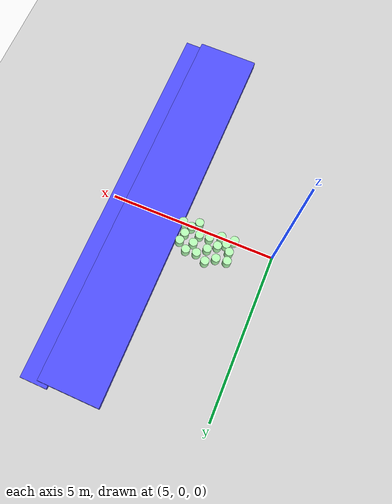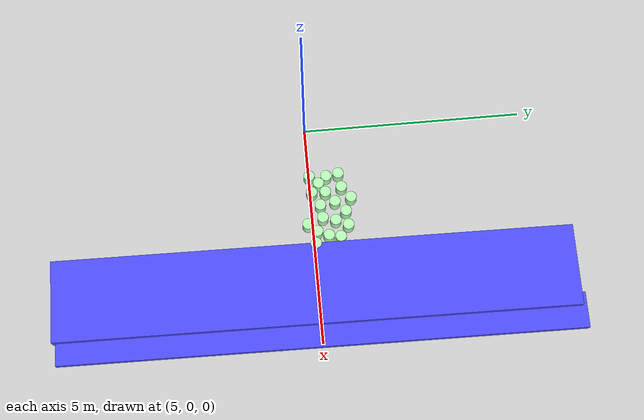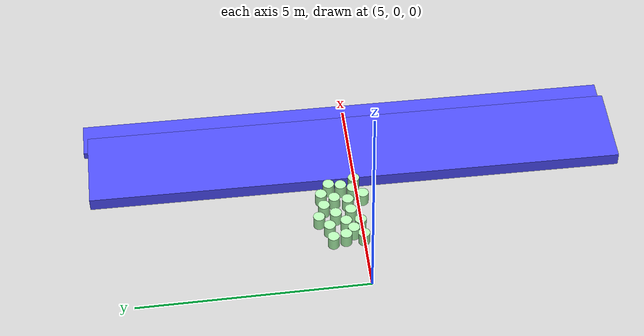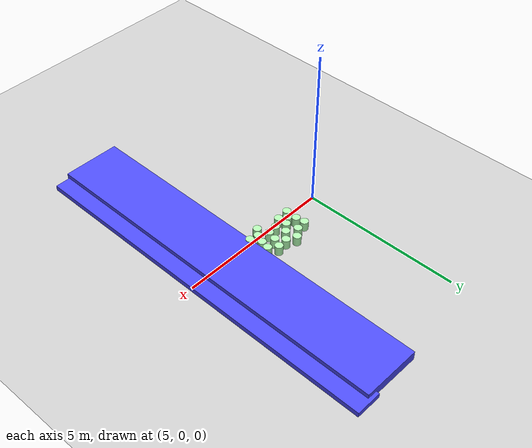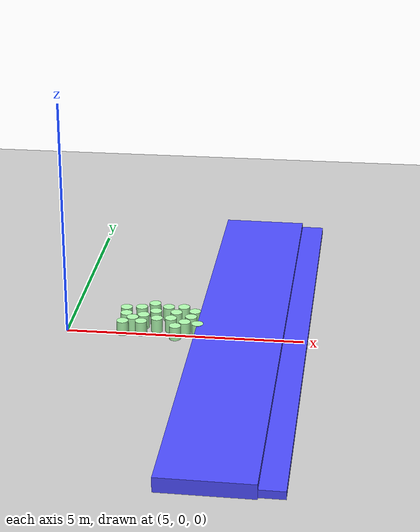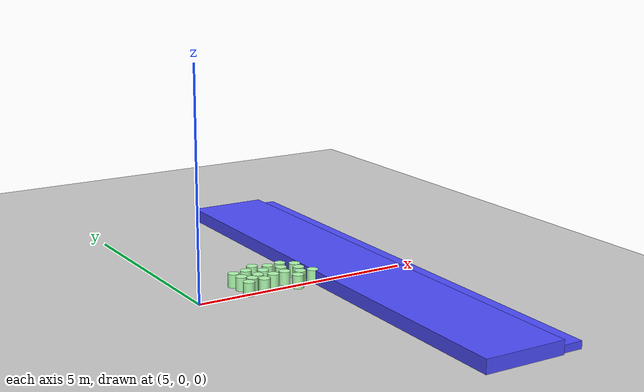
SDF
<sdf version="1.7">
 <world name="default">
  <model name="ground_plane">
   <static>1</static>
   <link name="link">
    <collision name="collision">
     <geometry><plane><normal>0 0 1</normal><size>100 100</size></plane></geometry>
     <surface><friction><ode><mu>100</mu><mu2>50</mu2></ode></friction></surface>
    </collision>
    <visual name="visual">
     <cast_shadows>0</cast_shadows>
     <geometry><plane><normal>0 0 1</normal><size>100 100</size></plane></geometry>
     <material>
      <script><uri>file://media/materials/scripts/gazebo.material</uri><name>Gazebo/Grey</name></script>
     </material>
    </visual>
   </link>
  </model>
  <model name="ban_400_80_30_clone">
   <link name="link">
    <inertial>
     <mass>1</mass>
     <inertia>
      <ixx>0.166667</ixx>
      <ixy>0</ixy>
      <ixz>0</ixz>
      <iyy>0.166667</iyy>
      <iyz>0</iyz>
      <izz>0.166667</izz>
     </inertia>
    </inertial>
    <visual name="visual">
     <geometry><box><size>11.7457 0.8 0.3</size></box></geometry>
     <material>
      <script><name>Gazebo/Grey</name><uri>file://media/materials/scripts/gazebo.material</uri></script>
      <shader type="pixel"><normal_map>__default__</normal_map></shader>
      <ambient>0.3 0.3 1 1</ambient>
      <diffuse>0.7 0.7 0.7 1</diffuse>
      <specular>0.01 0.01 0.01 1</specular>
      <emissive>0 0 0 1</emissive>
     </material>
    </visual>
    <collision name="collision">
     <geometry><box><size>11.7457 0.8 0.3</size></box></geometry>
     <surface>
      <friction>
       <ode><mu>1</mu><mu2>1</mu2><fdir1>0 0 0</fdir1><slip1>0</slip1><slip2>0</slip2></ode>
       <torsional>
        <coefficient>1</coefficient>
        <patch_radius>0</patch_radius>
        <surface_radius>0</surface_radius>
        <use_patch_radius>1</use_patch_radius>
        <ode><slip>0</slip></ode>
       </torsional>
      </friction>
      <bounce><restitution_coefficient>0</restitution_coefficient><threshold>1e+06</threshold></bounce>
      <contact>
       <collide_without_contact>0</collide_without_contact>
       <collide_without_contact_bitmask>1</collide_without_contact_bitmask>
       <collide_bitmask>1</collide_bitmask>
       <ode>
        <soft_cfm>0</soft_cfm>
        <soft_erp>0.2</soft_erp>
        <kp>1e+13</kp>
        <kd>1</kd>
        <max_vel>0.01</max_vel>
        <min_depth>0</min_depth>
       </ode>
       <bullet>
        <split_impulse>1</split_impulse>
        <split_impulse_penetration_threshold>-0.01</split_impulse_penetration_threshold>
        <soft_cfm>0</soft_cfm>
        <soft_erp>0.2</soft_erp>
        <kp>1e+13</kp>
        <kd>1</kd>
       </bullet>
      </contact>
     </surface>
    </collision>
   </link>
   <static>1</static>
   <pose>9.68721 0.016567 0 0 -0 1.55763</pose>
  </model>
  <model name="ban_400_80_30_clone_clone_clone">
   <link name="link">
    <inertial>
     <mass>1</mass>
     <inertia>
      <ixx>0.166667</ixx>
      <ixy>0</ixy>
      <ixz>0</ixz>
      <iyy>0.166667</iyy>
      <iyz>0</iyz>
      <izz>0.166667</izz>
     </inertia>
    </inertial>
    <visual name="visual">
     <geometry><box><size>11.703 1.83242 0.3</size></box></geometry>
     <material>
      <script><name>Gazebo/Grey</name><uri>file://media/materials/scripts/gazebo.material</uri></script>
      <shader type="pixel"><normal_map>__default__</normal_map></shader>
      <ambient>0.3 0.3 1 1</ambient>
      <diffuse>0.7 0.7 0.7 1</diffuse>
      <specular>0.01 0.01 0.01 1</specular>
      <emissive>0 0 0 1</emissive>
     </material>
    </visual>
    <collision name="collision">
     <geometry><box><size>11.703 1.83242 0.3</size></box></geometry>
     <surface>
      <friction>
       <ode><mu>1</mu><mu2>1</mu2><fdir1>0 0 0</fdir1><slip1>0</slip1><slip2>0</slip2></ode>
       <torsional>
        <coefficient>1</coefficient>
        <patch_radius>0</patch_radius>
        <surface_radius>0</surface_radius>
        <use_patch_radius>1</use_patch_radius>
        <ode><slip>0</slip></ode>
       </torsional>
      </friction>
      <bounce><restitution_coefficient>0</restitution_coefficient><threshold>1e+06</threshold></bounce>
      <contact>
       <collide_without_contact>0</collide_without_contact>
       <collide_without_contact_bitmask>1</collide_without_contact_bitmask>
       <collide_bitmask>1</collide_bitmask>
       <ode>
        <soft_cfm>0</soft_cfm>
        <soft_erp>0.2</soft_erp>
        <kp>1e+13</kp>
        <kd>1</kd>
        <max_vel>0.01</max_vel>
        <min_depth>0</min_depth>
       </ode>
       <bullet>
        <split_impulse>1</split_impulse>
        <split_impulse_penetration_threshold>-0.01</split_impulse_penetration_threshold>
        <soft_cfm>0</soft_cfm>
        <soft_erp>0.2</soft_erp>
        <kp>1e+13</kp>
        <kd>1</kd>
       </bullet>
      </contact>
     </surface>
    </collision>
   </link>
   <static>1</static>
   <pose>8.67792 -0.051809 0.139007 0 -0 1.55763</pose>
  </model>
  <model name="mhz_y_25_30_clone_13_clone_16">
   <link name="link">
    <inertial>
     <mass>1</mass>
     <inertia><ixx>0.145833</ixx><ixy>0</ixy><ixz>0</ixz><iyy>0.145833</iyy><iyz>0</iyz><izz>0.125</izz></inertia>
    </inertial>
    <visual name="visual">
     <geometry><cylinder><radius>0.125</radius><length>0.3</length></cylinder></geometry>
     <material>
      <script><name>Gazebo/Grey</name><uri>file://media/materials/scripts/gazebo.material</uri></script>
      <shader type="pixel"><normal_map>__default__</normal_map></shader>
      <ambient>0 1 0 0</ambient>
      <diffuse>0.7 1 0.7 1</diffuse>
      <specular>0.01 0.01 0.01 1</specular>
      <emissive>0 0 0 1</emissive>
     </material>
    </visual>
    <collision name="collision">
     <geometry><cylinder><radius>0.125</radius><length>0.3</length></cylinder></geometry>
     <surface>
      <friction>
       <ode><mu>1</mu><mu2>1</mu2><fdir1>0 0 0</fdir1><slip1>0</slip1><slip2>0</slip2></ode>
       <torsional>
        <coefficient>1</coefficient>
        <patch_radius>0</patch_radius>
        <surface_radius>0</surface_radius>
        <use_patch_radius>1</use_patch_radius>
        <ode><slip>0</slip></ode>
       </torsional>
      </friction>
      <bounce><restitution_coefficient>0</restitution_coefficient><threshold>1e+06</threshold></bounce>
      <contact>
       <collide_without_contact>0</collide_without_contact>
       <collide_without_contact_bitmask>1</collide_without_contact_bitmask>
       <collide_bitmask>1</collide_bitmask>
       <ode>
        <soft_cfm>0</soft_cfm>
        <soft_erp>0.2</soft_erp>
        <kp>1e+13</kp>
        <kd>1</kd>
        <max_vel>0.01</max_vel>
        <min_depth>0</min_depth>
       </ode>
       <bullet>
        <split_impulse>1</split_impulse>
        <split_impulse_penetration_threshold>-0.01</split_impulse_penetration_threshold>
        <soft_cfm>0</soft_cfm>
        <soft_erp>0.2</soft_erp>
        <kp>1e+13</kp>
        <kd>1</kd>
       </bullet>
      </contact>
     </surface>
    </collision>
   </link>
   <static>1</static>
   <pose>6.1814 0.012333 0.14679 0 -0 0</pose>
  </model>
  <model name="mhz_y_25_30_clone_13_clone_17">
   <link name="link">
    <inertial>
     <mass>1</mass>
     <inertia><ixx>0.145833</ixx><ixy>0</ixy><ixz>0</ixz><iyy>0.145833</iyy><iyz>0</iyz><izz>0.125</izz></inertia>
    </inertial>
    <visual name="visual">
     <geometry><cylinder><radius>0.125</radius><length>0.3</length></cylinder></geometry>
     <material>
      <script><name>Gazebo/Grey</name><uri>file://media/materials/scripts/gazebo.material</uri></script>
      <shader type="pixel"><normal_map>__default__</normal_map></shader>
      <ambient>0 1 0 0</ambient>
      <diffuse>0.7 1 0.7 1</diffuse>
      <specular>0.01 0.01 0.01 1</specular>
      <emissive>0 0 0 1</emissive>
     </material>
    </visual>
    <collision name="collision">
     <geometry><cylinder><radius>0.125</radius><length>0.3</length></cylinder></geometry>
     <surface>
      <friction>
       <ode><mu>1</mu><mu2>1</mu2><fdir1>0 0 0</fdir1><slip1>0</slip1><slip2>0</slip2></ode>
       <torsional>
        <coefficient>1</coefficient>
        <patch_radius>0</patch_radius>
        <surface_radius>0</surface_radius>
        <use_patch_radius>1</use_patch_radius>
        <ode><slip>0</slip></ode>
       </torsional>
      </friction>
      <bounce><restitution_coefficient>0</restitution_coefficient><threshold>1e+06</threshold></bounce>
      <contact>
       <collide_without_contact>0</collide_without_contact>
       <collide_without_contact_bitmask>1</collide_without_contact_bitmask>
       <collide_bitmask>1</collide_bitmask>
       <ode>
        <soft_cfm>0</soft_cfm>
        <soft_erp>0.2</soft_erp>
        <kp>1e+13</kp>
        <kd>1</kd>
        <max_vel>0.01</max_vel>
        <min_depth>0</min_depth>
       </ode>
       <bullet>
        <split_impulse>1</split_impulse>
        <split_impulse_penetration_threshold>-0.01</split_impulse_penetration_threshold>
        <soft_cfm>0</soft_cfm>
        <soft_erp>0.2</soft_erp>
        <kp>1e+13</kp>
        <kd>1</kd>
       </bullet>
      </contact>
     </surface>
    </collision>
   </link>
   <static>1</static>
   <pose>6.2067 0.395552 0.14679 0 -0 0</pose>
  </model>
  <model name="mhz_y_25_30_clone_13_clone_23">
   <link name="link">
    <inertial>
     <mass>1</mass>
     <inertia><ixx>0.145833</ixx><ixy>0</ixy><ixz>0</ixz><iyy>0.145833</iyy><iyz>0</iyz><izz>0.125</izz></inertia>
    </inertial>
    <visual name="visual">
     <geometry><cylinder><radius>0.125</radius><length>0.3</length></cylinder></geometry>
     <material>
      <script><name>Gazebo/Grey</name><uri>file://media/materials/scripts/gazebo.material</uri></script>
      <shader type="pixel"><normal_map>__default__</normal_map></shader>
      <ambient>0 1 0 0</ambient>
      <diffuse>0.7 1 0.7 1</diffuse>
      <specular>0.01 0.01 0.01 1</specular>
      <emissive>0 0 0 1</emissive>
     </material>
    </visual>
    <collision name="collision">
     <geometry><cylinder><radius>0.125</radius><length>0.3</length></cylinder></geometry>
     <surface>
      <friction>
       <ode><mu>1</mu><mu2>1</mu2><fdir1>0 0 0</fdir1><slip1>0</slip1><slip2>0</slip2></ode>
       <torsional>
        <coefficient>1</coefficient>
        <patch_radius>0</patch_radius>
        <surface_radius>0</surface_radius>
        <use_patch_radius>1</use_patch_radius>
        <ode><slip>0</slip></ode>
       </torsional>
      </friction>
      <bounce><restitution_coefficient>0</restitution_coefficient><threshold>1e+06</threshold></bounce>
      <contact>
       <collide_without_contact>0</collide_without_contact>
       <collide_without_contact_bitmask>1</collide_without_contact_bitmask>
       <collide_bitmask>1</collide_bitmask>
       <ode>
        <soft_cfm>0</soft_cfm>
        <soft_erp>0.2</soft_erp>
        <kp>1e+13</kp>
        <kd>1</kd>
        <max_vel>0.01</max_vel>
        <min_depth>0</min_depth>
       </ode>
       <bullet>
        <split_impulse>1</split_impulse>
        <split_impulse_penetration_threshold>-0.01</split_impulse_penetration_threshold>
        <soft_cfm>0</soft_cfm>
        <soft_erp>0.2</soft_erp>
        <kp>1e+13</kp>
        <kd>1</kd>
       </bullet>
      </contact>
     </surface>
    </collision>
   </link>
   <static>1</static>
   <pose>6.5702 0.039056 0.14679 0 -0 0</pose>
  </model>
  <model name="mhz_y_25_30_clone_13_clone_24">
   <link name="link">
    <inertial>
     <mass>1</mass>
     <inertia><ixx>0.145833</ixx><ixy>0</ixy><ixz>0</ixz><iyy>0.145833</iyy><iyz>0</iyz><izz>0.125</izz></inertia>
    </inertial>
    <visual name="visual">
     <geometry><cylinder><radius>0.125</radius><length>0.3</length></cylinder></geometry>
     <material>
      <script><name>Gazebo/Grey</name><uri>file://media/materials/scripts/gazebo.material</uri></script>
      <shader type="pixel"><normal_map>__default__</normal_map></shader>
      <ambient>0 1 0 0</ambient>
      <diffuse>0.7 1 0.7 1</diffuse>
      <specular>0.01 0.01 0.01 1</specular>
      <emissive>0 0 0 1</emissive>
     </material>
    </visual>
    <collision name="collision">
     <geometry><cylinder><radius>0.125</radius><length>0.3</length></cylinder></geometry>
     <surface>
      <friction>
       <ode><mu>1</mu><mu2>1</mu2><fdir1>0 0 0</fdir1><slip1>0</slip1><slip2>0</slip2></ode>
       <torsional>
        <coefficient>1</coefficient>
        <patch_radius>0</patch_radius>
        <surface_radius>0</surface_radius>
        <use_patch_radius>1</use_patch_radius>
        <ode><slip>0</slip></ode>
       </torsional>
      </friction>
      <bounce><restitution_coefficient>0</restitution_coefficient><threshold>1e+06</threshold></bounce>
      <contact>
       <collide_without_contact>0</collide_without_contact>
       <collide_without_contact_bitmask>1</collide_without_contact_bitmask>
       <collide_bitmask>1</collide_bitmask>
       <ode>
        <soft_cfm>0</soft_cfm>
        <soft_erp>0.2</soft_erp>
        <kp>1e+13</kp>
        <kd>1</kd>
        <max_vel>0.01</max_vel>
        <min_depth>0</min_depth>
       </ode>
       <bullet>
        <split_impulse>1</split_impulse>
        <split_impulse_penetration_threshold>-0.01</split_impulse_penetration_threshold>
        <soft_cfm>0</soft_cfm>
        <soft_erp>0.2</soft_erp>
        <kp>1e+13</kp>
        <kd>1</kd>
       </bullet>
      </contact>
     </surface>
    </collision>
   </link>
   <static>1</static>
   <pose>6.58135 0.348962 0.14679 0 -0 0</pose>
  </model>
  <model name="mhz_y_25_30_clone_13_clone_25">
   <link name="link">
    <inertial>
     <mass>1</mass>
     <inertia><ixx>0.145833</ixx><ixy>0</ixy><ixz>0</ixz><iyy>0.145833</iyy><iyz>0</iyz><izz>0.125</izz></inertia>
    </inertial>
    <visual name="visual">
     <geometry><cylinder><radius>0.125</radius><length>0.3</length></cylinder></geometry>
     <material>
      <script><name>Gazebo/Grey</name><uri>file://media/materials/scripts/gazebo.material</uri></script>
      <shader type="pixel"><normal_map>__default__</normal_map></shader>
      <ambient>0 1 0 0</ambient>
      <diffuse>0.7 1 0.7 1</diffuse>
      <specular>0.01 0.01 0.01 1</specular>
      <emissive>0 0 0 1</emissive>
     </material>
    </visual>
    <collision name="collision">
     <geometry><cylinder><radius>0.125</radius><length>0.3</length></cylinder></geometry>
     <surface>
      <friction>
       <ode><mu>1</mu><mu2>1</mu2><fdir1>0 0 0</fdir1><slip1>0</slip1><slip2>0</slip2></ode>
       <torsional>
        <coefficient>1</coefficient>
        <patch_radius>0</patch_radius>
        <surface_radius>0</surface_radius>
        <use_patch_radius>1</use_patch_radius>
        <ode><slip>0</slip></ode>
       </torsional>
      </friction>
      <bounce><restitution_coefficient>0</restitution_coefficient><threshold>1e+06</threshold></bounce>
      <contact>
       <collide_without_contact>0</collide_without_contact>
       <collide_without_contact_bitmask>1</collide_without_contact_bitmask>
       <collide_bitmask>1</collide_bitmask>
       <ode>
        <soft_cfm>0</soft_cfm>
        <soft_erp>0.2</soft_erp>
        <kp>1e+13</kp>
        <kd>1</kd>
        <max_vel>0.01</max_vel>
        <min_depth>0</min_depth>
       </ode>
       <bullet>
        <split_impulse>1</split_impulse>
        <split_impulse_penetration_threshold>-0.01</split_impulse_penetration_threshold>
        <soft_cfm>0</soft_cfm>
        <soft_erp>0.2</soft_erp>
        <kp>1e+13</kp>
        <kd>1</kd>
       </bullet>
      </contact>
     </surface>
    </collision>
   </link>
   <static>1</static>
   <pose>6.1648 0.673665 0.14679 0 -0 0</pose>
  </model>
  <model name="mhz_y_25_30_clone_13_clone_28">
   <link name="link">
    <inertial>
     <mass>1</mass>
     <inertia><ixx>0.145833</ixx><ixy>0</ixy><ixz>0</ixz><iyy>0.145833</iyy><iyz>0</iyz><izz>0.125</izz></inertia>
    </inertial>
    <visual name="visual">
     <geometry><cylinder><radius>0.125</radius><length>0.3</length></cylinder></geometry>
     <material>
      <script><name>Gazebo/Grey</name><uri>file://media/materials/scripts/gazebo.material</uri></script>
      <shader type="pixel"><normal_map>__default__</normal_map></shader>
      <ambient>0 1 0 0</ambient>
      <diffuse>0.7 1 0.7 1</diffuse>
      <specular>0.01 0.01 0.01 1</specular>
      <emissive>0 0 0 1</emissive>
     </material>
    </visual>
    <collision name="collision">
     <geometry><cylinder><radius>0.125</radius><length>0.3</length></cylinder></geometry>
     <surface>
      <friction>
       <ode><mu>1</mu><mu2>1</mu2><fdir1>0 0 0</fdir1><slip1>0</slip1><slip2>0</slip2></ode>
       <torsional>
        <coefficient>1</coefficient>
        <patch_radius>0</patch_radius>
        <surface_radius>0</surface_radius>
        <use_patch_radius>1</use_patch_radius>
        <ode><slip>0</slip></ode>
       </torsional>
      </friction>
      <bounce><restitution_coefficient>0</restitution_coefficient><threshold>1e+06</threshold></bounce>
      <contact>
       <collide_without_contact>0</collide_without_contact>
       <collide_without_contact_bitmask>1</collide_without_contact_bitmask>
       <collide_bitmask>1</collide_bitmask>
       <ode>
        <soft_cfm>0</soft_cfm>
        <soft_erp>0.2</soft_erp>
        <kp>1e+13</kp>
        <kd>1</kd>
        <max_vel>0.01</max_vel>
        <min_depth>0</min_depth>
       </ode>
       <bullet>
        <split_impulse>1</split_impulse>
        <split_impulse_penetration_threshold>-0.01</split_impulse_penetration_threshold>
        <soft_cfm>0</soft_cfm>
        <soft_erp>0.2</soft_erp>
        <kp>1e+13</kp>
        <kd>1</kd>
       </bullet>
      </contact>
     </surface>
    </collision>
   </link>
   <static>1</static>
   <pose>6.49026 0.719298 0.14679 0 -0 0</pose>
  </model>
  <model name="mhz_y_25_30_clone_13_clone_29">
   <link name="link">
    <inertial>
     <mass>1</mass>
     <inertia><ixx>0.145833</ixx><ixy>0</ixy><ixz>0</ixz><iyy>0.145833</iyy><iyz>0</iyz><izz>0.125</izz></inertia>
    </inertial>
    <visual name="visual">
     <geometry><cylinder><radius>0.125</radius><length>0.3</length></cylinder></geometry>
     <material>
      <script><name>Gazebo/Grey</name><uri>file://media/materials/scripts/gazebo.material</uri></script>
      <shader type="pixel"><normal_map>__default__</normal_map></shader>
      <ambient>0 1 0 0</ambient>
      <diffuse>0.7 1 0.7 1</diffuse>
      <specular>0.01 0.01 0.01 1</specular>
      <emissive>0 0 0 1</emissive>
     </material>
    </visual>
    <collision name="collision">
     <geometry><cylinder><radius>0.125</radius><length>0.3</length></cylinder></geometry>
     <surface>
      <friction>
       <ode><mu>1</mu><mu2>1</mu2><fdir1>0 0 0</fdir1><slip1>0</slip1><slip2>0</slip2></ode>
       <torsional>
        <coefficient>1</coefficient>
        <patch_radius>0</patch_radius>
        <surface_radius>0</surface_radius>
        <use_patch_radius>1</use_patch_radius>
        <ode><slip>0</slip></ode>
       </torsional>
      </friction>
      <bounce><restitution_coefficient>0</restitution_coefficient><threshold>1e+06</threshold></bounce>
      <contact>
       <collide_without_contact>0</collide_without_contact>
       <collide_without_contact_bitmask>1</collide_without_contact_bitmask>
       <collide_bitmask>1</collide_bitmask>
       <ode>
        <soft_cfm>0</soft_cfm>
        <soft_erp>0.2</soft_erp>
        <kp>1e+13</kp>
        <kd>1</kd>
        <max_vel>0.01</max_vel>
        <min_depth>0</min_depth>
       </ode>
       <bullet>
        <split_impulse>1</split_impulse>
        <split_impulse_penetration_threshold>-0.01</split_impulse_penetration_threshold>
        <soft_cfm>0</soft_cfm>
        <soft_erp>0.2</soft_erp>
        <kp>1e+13</kp>
        <kd>1</kd>
       </bullet>
      </contact>
     </surface>
    </collision>
   </link>
   <static>1</static>
   <pose>6.82115 0.546416 0.14679 0 -0 0</pose>
  </model>
  <model name="mhz_y_25_30_clone_13_clone_30">
   <link name="link">
    <inertial>
     <mass>1</mass>
     <inertia><ixx>0.145833</ixx><ixy>0</ixy><ixz>0</ixz><iyy>0.145833</iyy><iyz>0</iyz><izz>0.125</izz></inertia>
    </inertial>
    <visual name="visual">
     <geometry><cylinder><radius>0.125</radius><length>0.3</length></cylinder></geometry>
     <material>
      <script><name>Gazebo/Grey</name><uri>file://media/materials/scripts/gazebo.material</uri></script>
      <shader type="pixel"><normal_map>__default__</normal_map></shader>
      <ambient>0 1 0 0</ambient>
      <diffuse>0.7 1 0.7 1</diffuse>
      <specular>0.01 0.01 0.01 1</specular>
      <emissive>0 0 0 1</emissive>
     </material>
    </visual>
    <collision name="collision">
     <geometry><cylinder><radius>0.125</radius><length>0.3</length></cylinder></geometry>
     <surface>
      <friction>
       <ode><mu>1</mu><mu2>1</mu2><fdir1>0 0 0</fdir1><slip1>0</slip1><slip2>0</slip2></ode>
       <torsional>
        <coefficient>1</coefficient>
        <patch_radius>0</patch_radius>
        <surface_radius>0</surface_radius>
        <use_patch_radius>1</use_patch_radius>
        <ode><slip>0</slip></ode>
       </torsional>
      </friction>
      <bounce><restitution_coefficient>0</restitution_coefficient><threshold>1e+06</threshold></bounce>
      <contact>
       <collide_without_contact>0</collide_without_contact>
       <collide_without_contact_bitmask>1</collide_without_contact_bitmask>
       <collide_bitmask>1</collide_bitmask>
       <ode>
        <soft_cfm>0</soft_cfm>
        <soft_erp>0.2</soft_erp>
        <kp>1e+13</kp>
        <kd>1</kd>
        <max_vel>0.01</max_vel>
        <min_depth>0</min_depth>
       </ode>
       <bullet>
        <split_impulse>1</split_impulse>
        <split_impulse_penetration_threshold>-0.01</split_impulse_penetration_threshold>
        <soft_cfm>0</soft_cfm>
        <soft_erp>0.2</soft_erp>
        <kp>1e+13</kp>
        <kd>1</kd>
       </bullet>
      </contact>
     </surface>
    </collision>
   </link>
   <static>1</static>
   <pose>6.88396 0.210646 0.14679 0 -0 0</pose>
  </model>
  <model name="mhz_y_25_30_clone_13_clone_35">
   <link name="link">
    <inertial>
     <mass>1</mass>
     <inertia><ixx>0.145833</ixx><ixy>0</ixy><ixz>0</ixz><iyy>0.145833</iyy><iyz>0</iyz><izz>0.125</izz></inertia>
    </inertial>
    <visual name="visual">
     <geometry><cylinder><radius>0.125</radius><length>0.3</length></cylinder></geometry>
     <material>
      <script><name>Gazebo/Grey</name><uri>file://media/materials/scripts/gazebo.material</uri></script>
      <shader type="pixel"><normal_map>__default__</normal_map></shader>
      <ambient>0 1 0 0</ambient>
      <diffuse>0.7 1 0.7 1</diffuse>
      <specular>0.01 0.01 0.01 1</specular>
      <emissive>0 0 0 1</emissive>
     </material>
    </visual>
    <collision name="collision">
     <geometry><cylinder><radius>0.125</radius><length>0.3</length></cylinder></geometry>
     <surface>
      <friction>
       <ode><mu>1</mu><mu2>1</mu2><fdir1>0 0 0</fdir1><slip1>0</slip1><slip2>0</slip2></ode>
       <torsional>
        <coefficient>1</coefficient>
        <patch_radius>0</patch_radius>
        <surface_radius>0</surface_radius>
        <use_patch_radius>1</use_patch_radius>
        <ode><slip>0</slip></ode>
       </torsional>
      </friction>
      <bounce><restitution_coefficient>0</restitution_coefficient><threshold>1e+06</threshold></bounce>
      <contact>
       <collide_without_contact>0</collide_without_contact>
       <collide_without_contact_bitmask>1</collide_without_contact_bitmask>
       <collide_bitmask>1</collide_bitmask>
       <ode>
        <soft_cfm>0</soft_cfm>
        <soft_erp>0.2</soft_erp>
        <kp>1e+13</kp>
        <kd>1</kd>
        <max_vel>0.01</max_vel>
        <min_depth>0</min_depth>
       </ode>
       <bullet>
        <split_impulse>1</split_impulse>
        <split_impulse_penetration_threshold>-0.01</split_impulse_penetration_threshold>
        <soft_cfm>0</soft_cfm>
        <soft_erp>0.2</soft_erp>
        <kp>1e+13</kp>
        <kd>1</kd>
       </bullet>
      </contact>
     </surface>
    </collision>
   </link>
   <static>1</static>
   <pose>7.17955 0.241068 0.14679 0 -0 0</pose>
  </model>
  <model name="mhz_y_25_30_clone_13_clone_36">
   <link name="link">
    <inertial>
     <mass>1</mass>
     <inertia><ixx>0.145833</ixx><ixy>0</ixy><ixz>0</ixz><iyy>0.145833</iyy><iyz>0</iyz><izz>0.125</izz></inertia>
    </inertial>
    <visual name="visual">
     <geometry><cylinder><radius>0.125</radius><length>0.3</length></cylinder></geometry>
     <material>
      <script><name>Gazebo/Grey</name><uri>file://media/materials/scripts/gazebo.material</uri></script>
      <shader type="pixel"><normal_map>__default__</normal_map></shader>
      <ambient>0 1 0 0</ambient>
      <diffuse>0.7 1 0.7 1</diffuse>
      <specular>0.01 0.01 0.01 1</specular>
      <emissive>0 0 0 1</emissive>
     </material>
    </visual>
    <collision name="collision">
     <geometry><cylinder><radius>0.125</radius><length>0.3</length></cylinder></geometry>
     <surface>
      <friction>
       <ode><mu>1</mu><mu2>1</mu2><fdir1>0 0 0</fdir1><slip1>0</slip1><slip2>0</slip2></ode>
       <torsional>
        <coefficient>1</coefficient>
        <patch_radius>0</patch_radius>
        <surface_radius>0</surface_radius>
        <use_patch_radius>1</use_patch_radius>
        <ode><slip>0</slip></ode>
       </torsional>
      </friction>
      <bounce><restitution_coefficient>0</restitution_coefficient><threshold>1e+06</threshold></bounce>
      <contact>
       <collide_without_contact>0</collide_without_contact>
       <collide_without_contact_bitmask>1</collide_without_contact_bitmask>
       <collide_bitmask>1</collide_bitmask>
       <ode>
        <soft_cfm>0</soft_cfm>
        <soft_erp>0.2</soft_erp>
        <kp>1e+13</kp>
        <kd>1</kd>
        <max_vel>0.01</max_vel>
        <min_depth>0</min_depth>
       </ode>
       <bullet>
        <split_impulse>1</split_impulse>
        <split_impulse_penetration_threshold>-0.01</split_impulse_penetration_threshold>
        <soft_cfm>0</soft_cfm>
        <soft_erp>0.2</soft_erp>
        <kp>1e+13</kp>
        <kd>1</kd>
       </bullet>
      </contact>
     </surface>
    </collision>
   </link>
   <static>1</static>
   <pose>7.26067 0.527611 0.14679 0 -0 0</pose>
  </model>
  <model name="mhz_y_25_30_clone_13_clone_37">
   <link name="link">
    <inertial>
     <mass>1</mass>
     <inertia><ixx>0.145833</ixx><ixy>0</ixy><ixz>0</ixz><iyy>0.145833</iyy><iyz>0</iyz><izz>0.125</izz></inertia>
    </inertial>
    <visual name="visual">
     <geometry><cylinder><radius>0.125</radius><length>0.3</length></cylinder></geometry>
     <material>
      <script><name>Gazebo/Grey</name><uri>file://media/materials/scripts/gazebo.material</uri></script>
      <shader type="pixel"><normal_map>__default__</normal_map></shader>
      <ambient>0 1 0 0</ambient>
      <diffuse>0.7 1 0.7 1</diffuse>
      <specular>0.01 0.01 0.01 1</specular>
      <emissive>0 0 0 1</emissive>
     </material>
    </visual>
    <collision name="collision">
     <geometry><cylinder><radius>0.125</radius><length>0.3</length></cylinder></geometry>
     <surface>
      <friction>
       <ode><mu>1</mu><mu2>1</mu2><fdir1>0 0 0</fdir1><slip1>0</slip1><slip2>0</slip2></ode>
       <torsional>
        <coefficient>1</coefficient>
        <patch_radius>0</patch_radius>
        <surface_radius>0</surface_radius>
        <use_patch_radius>1</use_patch_radius>
        <ode><slip>0</slip></ode>
       </torsional>
      </friction>
      <bounce><restitution_coefficient>0</restitution_coefficient><threshold>1e+06</threshold></bounce>
      <contact>
       <collide_without_contact>0</collide_without_contact>
       <collide_without_contact_bitmask>1</collide_without_contact_bitmask>
       <collide_bitmask>1</collide_bitmask>
       <ode>
        <soft_cfm>0</soft_cfm>
        <soft_erp>0.2</soft_erp>
        <kp>1e+13</kp>
        <kd>1</kd>
        <max_vel>0.01</max_vel>
        <min_depth>0</min_depth>
       </ode>
       <bullet>
        <split_impulse>1</split_impulse>
        <split_impulse_penetration_threshold>-0.01</split_impulse_penetration_threshold>
        <soft_cfm>0</soft_cfm>
        <soft_erp>0.2</soft_erp>
        <kp>1e+13</kp>
        <kd>1</kd>
       </bullet>
      </contact>
     </surface>
    </collision>
   </link>
   <static>1</static>
   <pose>7.3111 -0.10714 0.14679 0 -0 0</pose>
  </model>
  <model name="mhz_y_25_30_clone_13_clone_38">
   <link name="link">
    <inertial>
     <mass>1</mass>
     <inertia><ixx>0.145833</ixx><ixy>0</ixy><ixz>0</ixz><iyy>0.145833</iyy><iyz>0</iyz><izz>0.125</izz></inertia>
    </inertial>
    <visual name="visual">
     <geometry><cylinder><radius>0.125</radius><length>0.3</length></cylinder></geometry>
     <material>
      <script><name>Gazebo/Grey</name><uri>file://media/materials/scripts/gazebo.material</uri></script>
      <shader type="pixel"><normal_map>__default__</normal_map></shader>
      <ambient>0 1 0 0</ambient>
      <diffuse>0.7 1 0.7 1</diffuse>
      <specular>0.01 0.01 0.01 1</specular>
      <emissive>0 0 0 1</emissive>
     </material>
    </visual>
    <collision name="collision">
     <geometry><cylinder><radius>0.125</radius><length>0.3</length></cylinder></geometry>
     <surface>
      <friction>
       <ode><mu>1</mu><mu2>1</mu2><fdir1>0 0 0</fdir1><slip1>0</slip1><slip2>0</slip2></ode>
       <torsional>
        <coefficient>1</coefficient>
        <patch_radius>0</patch_radius>
        <surface_radius>0</surface_radius>
        <use_patch_radius>1</use_patch_radius>
        <ode><slip>0</slip></ode>
       </torsional>
      </friction>
      <bounce><restitution_coefficient>0</restitution_coefficient><threshold>1e+06</threshold></bounce>
      <contact>
       <collide_without_contact>0</collide_without_contact>
       <collide_without_contact_bitmask>1</collide_without_contact_bitmask>
       <collide_bitmask>1</collide_bitmask>
       <ode>
        <soft_cfm>0</soft_cfm>
        <soft_erp>0.2</soft_erp>
        <kp>1e+13</kp>
        <kd>1</kd>
        <max_vel>0.01</max_vel>
        <min_depth>0</min_depth>
       </ode>
       <bullet>
        <split_impulse>1</split_impulse>
        <split_impulse_penetration_threshold>-0.01</split_impulse_penetration_threshold>
        <soft_cfm>0</soft_cfm>
        <soft_erp>0.2</soft_erp>
        <kp>1e+13</kp>
        <kd>1</kd>
       </bullet>
      </contact>
     </surface>
    </collision>
   </link>
   <static>1</static>
   <pose>7.59845 0.348571 0.14679 0 -0 0</pose>
  </model>
  <model name="mhz_y_25_30_clone_13_clone_40">
   <link name="link">
    <inertial>
     <mass>1</mass>
     <inertia><ixx>0.145833</ixx><ixy>0</ixy><ixz>0</ixz><iyy>0.145833</iyy><iyz>0</iyz><izz>0.125</izz></inertia>
    </inertial>
    <visual name="visual">
     <geometry><cylinder><radius>0.125</radius><length>0.3</length></cylinder></geometry>
     <material>
      <script><name>Gazebo/Grey</name><uri>file://media/materials/scripts/gazebo.material</uri></script>
      <shader type="pixel"><normal_map>__default__</normal_map></shader>
      <ambient>0 1 0 0</ambient>
      <diffuse>0.7 1 0.7 1</diffuse>
      <specular>0.01 0.01 0.01 1</specular>
      <emissive>0 0 0 1</emissive>
     </material>
    </visual>
    <collision name="collision">
     <geometry><cylinder><radius>0.125</radius><length>0.3</length></cylinder></geometry>
     <surface>
      <friction>
       <ode><mu>1</mu><mu2>1</mu2><fdir1>0 0 0</fdir1><slip1>0</slip1><slip2>0</slip2></ode>
       <torsional>
        <coefficient>1</coefficient>
        <patch_radius>0</patch_radius>
        <surface_radius>0</surface_radius>
        <use_patch_radius>1</use_patch_radius>
        <ode><slip>0</slip></ode>
       </torsional>
      </friction>
      <bounce><restitution_coefficient>0</restitution_coefficient><threshold>1e+06</threshold></bounce>
      <contact>
       <collide_without_contact>0</collide_without_contact>
       <collide_without_contact_bitmask>1</collide_without_contact_bitmask>
       <collide_bitmask>1</collide_bitmask>
       <ode>
        <soft_cfm>0</soft_cfm>
        <soft_erp>0.2</soft_erp>
        <kp>1e+13</kp>
        <kd>1</kd>
        <max_vel>0.01</max_vel>
        <min_depth>0</min_depth>
       </ode>
       <bullet>
        <split_impulse>1</split_impulse>
        <split_impulse_penetration_threshold>-0.01</split_impulse_penetration_threshold>
        <soft_cfm>0</soft_cfm>
        <soft_erp>0.2</soft_erp>
        <kp>1e+13</kp>
        <kd>1</kd>
       </bullet>
      </contact>
     </surface>
    </collision>
   </link>
   <static>1</static>
   <pose>7.76666 0.03715 0.14679 0 -0 0</pose>
  </model>
  <model name="mhz_y_25_30_clone_13_clone_42">
   <link name="link">
    <inertial>
     <mass>1</mass>
     <inertia><ixx>0.145833</ixx><ixy>0</ixy><ixz>0</ixz><iyy>0.145833</iyy><iyz>0</iyz><izz>0.125</izz></inertia>
    </inertial>
    <visual name="visual">
     <geometry><cylinder><radius>0.125</radius><length>0.3</length></cylinder></geometry>
     <material>
      <script><name>Gazebo/Grey</name><uri>file://media/materials/scripts/gazebo.material</uri></script>
      <shader type="pixel"><normal_map>__default__</normal_map></shader>
      <ambient>0 1 0 0</ambient>
      <diffuse>0.7 1 0.7 1</diffuse>
      <specular>0.01 0.01 0.01 1</specular>
      <emissive>0 0 0 1</emissive>
     </material>
    </visual>
    <collision name="collision">
     <geometry><cylinder><radius>0.125</radius><length>0.3</length></cylinder></geometry>
     <surface>
      <friction>
       <ode><mu>1</mu><mu2>1</mu2><fdir1>0 0 0</fdir1><slip1>0</slip1><slip2>0</slip2></ode>
       <torsional>
        <coefficient>1</coefficient>
        <patch_radius>0</patch_radius>
        <surface_radius>0</surface_radius>
        <use_patch_radius>1</use_patch_radius>
        <ode><slip>0</slip></ode>
       </torsional>
      </friction>
      <bounce><restitution_coefficient>0</restitution_coefficient><threshold>1e+06</threshold></bounce>
      <contact>
       <collide_without_contact>0</collide_without_contact>
       <collide_without_contact_bitmask>1</collide_without_contact_bitmask>
       <collide_bitmask>1</collide_bitmask>
       <ode>
        <soft_cfm>0</soft_cfm>
        <soft_erp>0.2</soft_erp>
        <kp>1e+13</kp>
        <kd>1</kd>
        <max_vel>0.01</max_vel>
        <min_depth>0</min_depth>
       </ode>
       <bullet>
        <split_impulse>1</split_impulse>
        <split_impulse_penetration_threshold>-0.01</split_impulse_penetration_threshold>
        <soft_cfm>0</soft_cfm>
        <soft_erp>0.2</soft_erp>
        <kp>1e+13</kp>
        <kd>1</kd>
       </bullet>
      </contact>
     </surface>
    </collision>
   </link>
   <static>1</static>
   <pose>7.06539 0.775513 0.14679 0 -0 0</pose>
  </model>
  <model name="mhz_y_25_30_clone_13_clone_50">
   <link name="link">
    <inertial>
     <mass>1</mass>
     <inertia><ixx>0.145833</ixx><ixy>0</ixy><ixz>0</ixz><iyy>0.145833</iyy><iyz>0</iyz><izz>0.125</izz></inertia>
    </inertial>
    <visual name="visual">
     <geometry><cylinder><radius>0.125</radius><length>0.3</length></cylinder></geometry>
     <material>
      <script><name>Gazebo/Grey</name><uri>file://media/materials/scripts/gazebo.material</uri></script>
      <shader type="pixel"><normal_map>__default__</normal_map></shader>
      <ambient>0 1 0 0</ambient>
      <diffuse>0.7 1 0.7 1</diffuse>
      <specular>0.01 0.01 0.01 1</specular>
      <emissive>0 0 0 1</emissive>
     </material>
    </visual>
    <collision name="collision">
     <geometry><cylinder><radius>0.125</radius><length>0.3</length></cylinder></geometry>
     <surface>
      <friction>
       <ode><mu>1</mu><mu2>1</mu2><fdir1>0 0 0</fdir1><slip1>0</slip1><slip2>0</slip2></ode>
       <torsional>
        <coefficient>1</coefficient>
        <patch_radius>0</patch_radius>
        <surface_radius>0</surface_radius>
        <use_patch_radius>1</use_patch_radius>
        <ode><slip>0</slip></ode>
       </torsional>
      </friction>
      <bounce><restitution_coefficient>0</restitution_coefficient><threshold>1e+06</threshold></bounce>
      <contact>
       <collide_without_contact>0</collide_without_contact>
       <collide_without_contact_bitmask>1</collide_without_contact_bitmask>
       <collide_bitmask>1</collide_bitmask>
       <ode>
        <soft_cfm>0</soft_cfm>
        <soft_erp>0.2</soft_erp>
        <kp>1e+13</kp>
        <kd>1</kd>
        <max_vel>0.01</max_vel>
        <min_depth>0</min_depth>
       </ode>
       <bullet>
        <split_impulse>1</split_impulse>
        <split_impulse_penetration_threshold>-0.01</split_impulse_penetration_threshold>
        <soft_cfm>0</soft_cfm>
        <soft_erp>0.2</soft_erp>
        <kp>1e+13</kp>
        <kd>1</kd>
       </bullet>
      </contact>
     </surface>
    </collision>
   </link>
   <static>1</static>
   <pose>6.36628 0.209485 0.14679 0 -0 0</pose>
  </model>
  <model name="mhz_y_25_30_clone_13_clone_51">
   <link name="link">
    <inertial>
     <mass>1</mass>
     <inertia><ixx>0.145833</ixx><ixy>0</ixy><ixz>0</ixz><iyy>0.145833</iyy><iyz>0</iyz><izz>0.125</izz></inertia>
    </inertial>
    <visual name="visual">
     <geometry><cylinder><radius>0.125</radius><length>0.3</length></cylinder></geometry>
     <material>
      <script><name>Gazebo/Grey</name><uri>file://media/materials/scripts/gazebo.material</uri></script>
      <shader type="pixel"><normal_map>__default__</normal_map></shader>
      <ambient>0 1 0 0</ambient>
      <diffuse>0.7 1 0.7 1</diffuse>
      <specular>0.01 0.01 0.01 1</specular>
      <emissive>0 0 0 1</emissive>
     </material>
    </visual>
    <collision name="collision">
     <geometry><cylinder><radius>0.125</radius><length>0.3</length></cylinder></geometry>
     <surface>
      <friction>
       <ode><mu>1</mu><mu2>1</mu2><fdir1>0 0 0</fdir1><slip1>0</slip1><slip2>0</slip2></ode>
       <torsional>
        <coefficient>1</coefficient>
        <patch_radius>0</patch_radius>
        <surface_radius>0</surface_radius>
        <use_patch_radius>1</use_patch_radius>
        <ode><slip>0</slip></ode>
       </torsional>
      </friction>
      <bounce><restitution_coefficient>0</restitution_coefficient><threshold>1e+06</threshold></bounce>
      <contact>
       <collide_without_contact>0</collide_without_contact>
       <collide_without_contact_bitmask>1</collide_without_contact_bitmask>
       <collide_bitmask>1</collide_bitmask>
       <ode>
        <soft_cfm>0</soft_cfm>
        <soft_erp>0.2</soft_erp>
        <kp>1e+13</kp>
        <kd>1</kd>
        <max_vel>0.01</max_vel>
        <min_depth>0</min_depth>
       </ode>
       <bullet>
        <split_impulse>1</split_impulse>
        <split_impulse_penetration_threshold>-0.01</split_impulse_penetration_threshold>
        <soft_cfm>0</soft_cfm>
        <soft_erp>0.2</soft_erp>
        <kp>1e+13</kp>
        <kd>1</kd>
       </bullet>
      </contact>
     </surface>
    </collision>
   </link>
   <static>1</static>
   <pose>7.65192 0.608947 0.14679 0 -0 0</pose>
  </model>
  <model name="mhz_y_25_30_clone_13_clone_52">
   <link name="link">
    <inertial>
     <mass>1</mass>
     <inertia><ixx>0.145833</ixx><ixy>0</ixy><ixz>0</ixz><iyy>0.145833</iyy><iyz>0</iyz><izz>0.125</izz></inertia>
    </inertial>
    <visual name="visual">
     <geometry><cylinder><radius>0.125</radius><length>0.3</length></cylinder></geometry>
     <material>
      <script><name>Gazebo/Grey</name><uri>file://media/materials/scripts/gazebo.material</uri></script>
      <shader type="pixel"><normal_map>__default__</normal_map></shader>
      <ambient>0 1 0 0</ambient>
      <diffuse>0.7 1 0.7 1</diffuse>
      <specular>0.01 0.01 0.01 1</specular>
      <emissive>0 0 0 1</emissive>
     </material>
    </visual>
    <collision name="collision">
     <geometry><cylinder><radius>0.125</radius><length>0.3</length></cylinder></geometry>
     <surface>
      <friction>
       <ode><mu>1</mu><mu2>1</mu2><fdir1>0 0 0</fdir1><slip1>0</slip1><slip2>0</slip2></ode>
       <torsional>
        <coefficient>1</coefficient>
        <patch_radius>0</patch_radius>
        <surface_radius>0</surface_radius>
        <use_patch_radius>1</use_patch_radius>
        <ode><slip>0</slip></ode>
       </torsional>
      </friction>
      <bounce><restitution_coefficient>0</restitution_coefficient><threshold>1e+06</threshold></bounce>
      <contact>
       <collide_without_contact>0</collide_without_contact>
       <collide_without_contact_bitmask>1</collide_without_contact_bitmask>
       <collide_bitmask>1</collide_bitmask>
       <ode>
        <soft_cfm>0</soft_cfm>
        <soft_erp>0.2</soft_erp>
        <kp>1e+13</kp>
        <kd>1</kd>
        <max_vel>0.01</max_vel>
        <min_depth>0</min_depth>
       </ode>
       <bullet>
        <split_impulse>1</split_impulse>
        <split_impulse_penetration_threshold>-0.01</split_impulse_penetration_threshold>
        <soft_cfm>0</soft_cfm>
        <soft_erp>0.2</soft_erp>
        <kp>1e+13</kp>
        <kd>1</kd>
       </bullet>
      </contact>
     </surface>
    </collision>
   </link>
   <static>1</static>
   <pose>7.38959 0.802943 0.14679 0 -0 0</pose>
  </model>
  <model name="mhz_y_25_30_clone_13_clone_54">
   <link name="link">
    <inertial>
     <mass>1</mass>
     <inertia><ixx>0.145833</ixx><ixy>0</ixy><ixz>0</ixz><iyy>0.145833</iyy><iyz>0</iyz><izz>0.125</izz></inertia>
    </inertial>
    <visual name="visual">
     <geometry><cylinder><radius>0.125</radius><length>0.3</length></cylinder></geometry>
     <material>
      <script><name>Gazebo/Grey</name><uri>file://media/materials/scripts/gazebo.material</uri></script>
      <shader type="pixel"><normal_map>__default__</normal_map></shader>
      <ambient>0 1 0 0</ambient>
      <diffuse>0.7 1 0.7 1</diffuse>
      <specular>0.01 0.01 0.01 1</specular>
      <emissive>0 0 0 1</emissive>
     </material>
    </visual>
    <collision name="collision">
     <geometry><cylinder><radius>0.125</radius><length>0.3</length></cylinder></geometry>
     <surface>
      <friction>
       <ode><mu>1</mu><mu2>1</mu2><fdir1>0 0 0</fdir1><slip1>0</slip1><slip2>0</slip2></ode>
       <torsional>
        <coefficient>1</coefficient>
        <patch_radius>0</patch_radius>
        <surface_radius>0</surface_radius>
        <use_patch_radius>1</use_patch_radius>
        <ode><slip>0</slip></ode>
       </torsional>
      </friction>
      <bounce><restitution_coefficient>0</restitution_coefficient><threshold>1e+06</threshold></bounce>
      <contact>
       <collide_without_contact>0</collide_without_contact>
       <collide_without_contact_bitmask>1</collide_without_contact_bitmask>
       <collide_bitmask>1</collide_bitmask>
       <ode>
        <soft_cfm>0</soft_cfm>
        <soft_erp>0.2</soft_erp>
        <kp>1e+13</kp>
        <kd>1</kd>
        <max_vel>0.01</max_vel>
        <min_depth>0</min_depth>
       </ode>
       <bullet>
        <split_impulse>1</split_impulse>
        <split_impulse_penetration_threshold>-0.01</split_impulse_penetration_threshold>
        <soft_cfm>0</soft_cfm>
        <soft_erp>0.2</soft_erp>
        <kp>1e+13</kp>
        <kd>1</kd>
       </bullet>
      </contact>
     </surface>
    </collision>
   </link>
   <static>1</static>
   <pose>6.75308 0.916862 0.14679 0 -0 0</pose>
  </model>
  <model name="mhz_y_25_30_clone_13_clone_55">
   <link name="link">
    <inertial>
     <mass>1</mass>
     <inertia><ixx>0.145833</ixx><ixy>0</ixy><ixz>0</ixz><iyy>0.145833</iyy><iyz>0</iyz><izz>0.125</izz></inertia>
    </inertial>
    <visual name="visual">
     <geometry><cylinder><radius>0.125</radius><length>0.3</length></cylinder></geometry>
     <material>
      <script><name>Gazebo/Grey</name><uri>file://media/materials/scripts/gazebo.material</uri></script>
      <shader type="pixel"><normal_map>__default__</normal_map></shader>
      <ambient>0 1 0 0</ambient>
      <diffuse>0.7 1 0.7 1</diffuse>
      <specular>0.01 0.01 0.01 1</specular>
      <emissive>0 0 0 1</emissive>
     </material>
    </visual>
    <collision name="collision">
     <geometry><cylinder><radius>0.125</radius><length>0.3</length></cylinder></geometry>
     <surface>
      <friction>
       <ode><mu>1</mu><mu2>1</mu2><fdir1>0 0 0</fdir1><slip1>0</slip1><slip2>0</slip2></ode>
       <torsional>
        <coefficient>1</coefficient>
        <patch_radius>0</patch_radius>
        <surface_radius>0</surface_radius>
        <use_patch_radius>1</use_patch_radius>
        <ode><slip>0</slip></ode>
       </torsional>
      </friction>
      <bounce><restitution_coefficient>0</restitution_coefficient><threshold>1e+06</threshold></bounce>
      <contact>
       <collide_without_contact>0</collide_without_contact>
       <collide_without_contact_bitmask>1</collide_without_contact_bitmask>
       <collide_bitmask>1</collide_bitmask>
       <ode>
        <soft_cfm>0</soft_cfm>
        <soft_erp>0.2</soft_erp>
        <kp>1e+13</kp>
        <kd>1</kd>
        <max_vel>0.01</max_vel>
        <min_depth>0</min_depth>
       </ode>
       <bullet>
        <split_impulse>1</split_impulse>
        <split_impulse_penetration_threshold>-0.01</split_impulse_penetration_threshold>
        <soft_cfm>0</soft_cfm>
        <soft_erp>0.2</soft_erp>
        <kp>1e+13</kp>
        <kd>1</kd>
       </bullet>
      </contact>
     </surface>
    </collision>
   </link>
   <static>1</static>
   <pose>7.48928 0.095109 0.14679 0 -0 0</pose>
  </model>
 </world>
</sdf>
